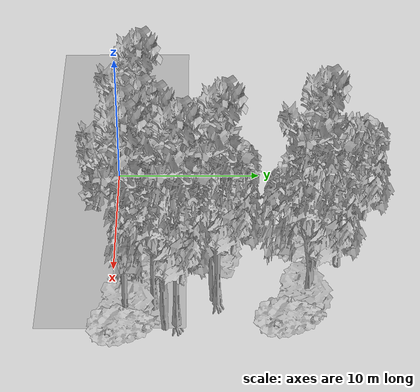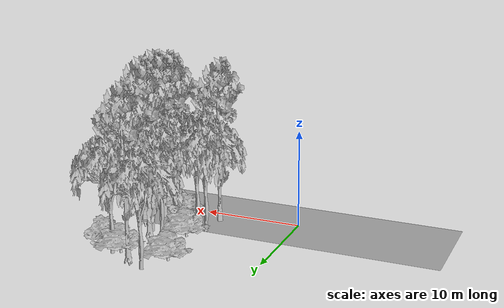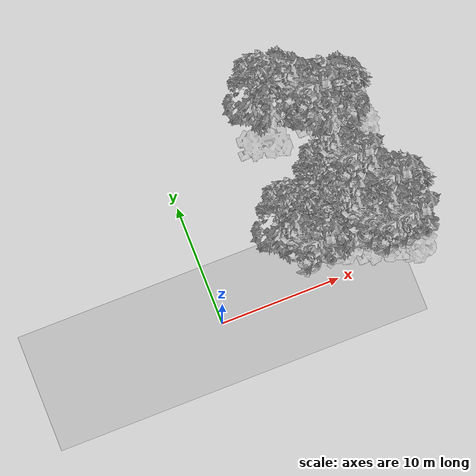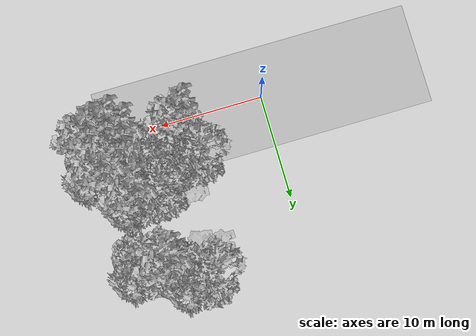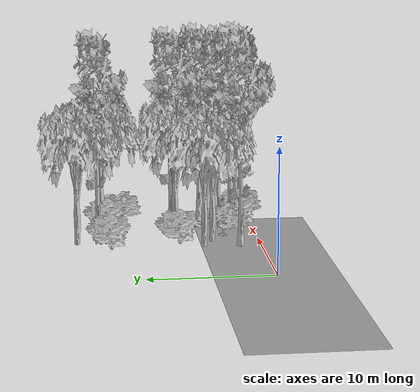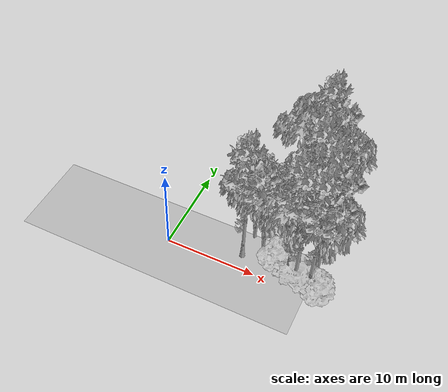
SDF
<sdf version="1.7">
 <world name="default">
  <model name="ground_plane">
   <static>1</static>
   <link name="link">
    <collision name="collision">
     <pose>-50 0 0 0 -0 0</pose>
     <geometry><plane><normal>0 0 1</normal><size>100 100</size></plane></geometry>
     <surface><contact><ode><min_depth>0.01</min_depth><max_vel>0</max_vel></ode></contact></surface>
    </collision>
    <visual name="grass">
     <cast_shadows>0</cast_shadows>
     <geometry>
      <mesh>
       <scale>0.5814285714285714 0.18142857142857144 0.1</scale>
       <uri>file://grass_plane/meshes/grass_plane.dae</uri>
      </mesh>
     </geometry>
    </visual>
   </link>
  </model>
  <model name="Tree 0">
   <static>1</static>
   <pose>11.952881547785147 6.665123771803703 0 1.57079 -0 0</pose>
   <link name="link">
    <collision name="collision">
     <geometry><mesh><scale>3.5 5 3.5</scale><uri>model://tree_2/meshes/tree_2.obj</uri></mesh></geometry>
    </collision>
    <visual name="visual">
     <geometry><mesh><scale>3.5 5 3.5</scale><uri>model://tree_2/meshes/tree_2.obj</uri></mesh></geometry>
    </visual>
   </link>
  </model>
  <model name="Tree 1">
   <static>1</static>
   <pose>13.975722320561026 12.785778803555374 0 1.57079 -0 0</pose>
   <link name="link">
    <collision name="collision">
     <geometry><mesh><scale>3.5 5 3.5</scale><uri>model://tree_2/meshes/tree_2.obj</uri></mesh></geometry>
    </collision>
    <visual name="visual">
     <geometry><mesh><scale>3.5 5 3.5</scale><uri>model://tree_2/meshes/tree_2.obj</uri></mesh></geometry>
    </visual>
   </link>
  </model>
  <model name="Tree 19">
   <static>1</static>
   <pose>12.153450207134867 3.3413821550245935 0 1.57079 -0 0</pose>
   <link name="link">
    <collision name="collision">
     <geometry><mesh><scale>3.5 5 3.5</scale><uri>model://tree_2/meshes/tree_2.obj</uri></mesh></geometry>
    </collision>
    <visual name="visual">
     <geometry><mesh><scale>3.5 5 3.5</scale><uri>model://tree_2/meshes/tree_2.obj</uri></mesh></geometry>
    </visual>
   </link>
  </model>
  <model name="Tree 25">
   <static>1</static>
   <pose>12.189049988500479 13.133916527196217 0 1.57079 -0 0</pose>
   <link name="link">
    <collision name="collision">
     <geometry><mesh><scale>3.5 5 3.5</scale><uri>model://tree_9/meshes/tree_9.obj</uri></mesh></geometry>
    </collision>
    <visual name="visual">
     <geometry><mesh><scale>3.5 5 3.5</scale><uri>model://tree_9/meshes/tree_9.obj</uri></mesh></geometry>
    </visual>
   </link>
  </model>
  <model name="Tree 35">
   <static>1</static>
   <pose>13.080208053278682 1.8805832757678118 0 1.57079 -0 0</pose>
   <link name="link">
    <collision name="collision">
     <geometry><mesh><scale>3.5 5 3.5</scale><uri>model://tree_9/meshes/tree_9.obj</uri></mesh></geometry>
    </collision>
    <visual name="visual">
     <geometry><mesh><scale>3.5 5 3.5</scale><uri>model://tree_9/meshes/tree_9.obj</uri></mesh></geometry>
    </visual>
   </link>
  </model>
  <model name="Tree 54">
   <static>1</static>
   <pose>8.050612538805687 4.645192115805077 0 1.57079 -0 0</pose>
   <link name="link">
    <collision name="collision">
     <geometry><mesh><scale>3.5 5 3.5</scale><uri>model://tree_2/meshes/tree_2.obj</uri></mesh></geometry>
    </collision>
    <visual name="visual">
     <geometry><mesh><scale>3.5 5 3.5</scale><uri>model://tree_2/meshes/tree_2.obj</uri></mesh></geometry>
    </visual>
   </link>
  </model>
  <model name="Tree 61">
   <static>1</static>
   <pose>9.395332496354378 3.830157012810478 0 1.57079 -0 0</pose>
   <link name="link">
    <collision name="collision">
     <geometry><mesh><scale>3.5 5 3.5</scale><uri>model://tree_2/meshes/tree_2.obj</uri></mesh></geometry>
    </collision>
    <visual name="visual">
     <geometry><mesh><scale>3.5 5 3.5</scale><uri>model://tree_2/meshes/tree_2.obj</uri></mesh></geometry>
    </visual>
   </link>
  </model>
  <model name="Tree 71">
   <static>1</static>
   <pose>15.646542429603514 3.546168688105926 0 1.57079 -0 0</pose>
   <link name="link">
    <collision name="collision">
     <geometry><mesh><scale>3.5 5 3.5</scale><uri>model://tree_2/meshes/tree_2.obj</uri></mesh></geometry>
    </collision>
    <visual name="visual">
     <geometry><mesh><scale>3.5 5 3.5</scale><uri>model://tree_2/meshes/tree_2.obj</uri></mesh></geometry>
    </visual>
   </link>
  </model>
  <model name="Tree 87">
   <static>1</static>
   <pose>7.987197289794899 1.6982685209467263 0 1.57079 -0 0</pose>
   <link name="link">
    <collision name="collision">
     <geometry><mesh><scale>3.5 5 3.5</scale><uri>model://tree_9/meshes/tree_9.obj</uri></mesh></geometry>
    </collision>
    <visual name="visual">
     <geometry><mesh><scale>3.5 5 3.5</scale><uri>model://tree_9/meshes/tree_9.obj</uri></mesh></geometry>
    </visual>
   </link>
  </model>
  <model name="Tree 97">
   <static>1</static>
   <pose>14.24066784914951 0.8231828219312138 0 1.57079 -0 0</pose>
   <link name="link">
    <collision name="collision">
     <geometry><mesh><scale>3 2 3</scale><uri>model://tree_3/meshes/tree_3.obj</uri></mesh></geometry>
    </collision>
    <visual name="visual">
     <geometry><mesh><scale>3 2 3</scale><uri>model://tree_3/meshes/tree_3.obj</uri></mesh></geometry>
    </visual>
   </link>
  </model>
  <model name="Tree 128">
   <static>1</static>
   <pose>8.499422770301585 12.15838869686953 0 1.57079 -0 0</pose>
   <link name="link">
    <collision name="collision">
     <geometry><mesh><scale>3 2 3</scale><uri>model://tree_3/meshes/tree_3.obj</uri></mesh></geometry>
    </collision>
    <visual name="visual">
     <geometry><mesh><scale>3 2 3</scale><uri>model://tree_3/meshes/tree_3.obj</uri></mesh></geometry>
    </visual>
   </link>
  </model>
  <model name="Tree 192">
   <static>1</static>
   <pose>15.800527720629034 11.355490840949617 0 1.57079 -0 0</pose>
   <link name="link">
    <collision name="collision">
     <geometry><mesh><scale>4 2.5 4</scale><uri>model://tree_1/meshes/tree_1.obj</uri></mesh></geometry>
    </collision>
    <visual name="visual">
     <geometry><mesh><scale>4 2.5 4</scale><uri>model://tree_1/meshes/tree_1.obj</uri></mesh></geometry>
    </visual>
   </link>
  </model>
  <model name="Tree 325">
   <static>1</static>
   <pose>13.505282332866315 12.239206007289862 0 1.57079 -0 0</pose>
   <link name="link">
    <collision name="collision">
     <geometry><mesh><scale>3 2 3</scale><uri>model://tree_3/meshes/tree_3.obj</uri></mesh></geometry>
    </collision>
    <visual name="visual">
     <geometry><mesh><scale>3 2 3</scale><uri>model://tree_3/meshes/tree_3.obj</uri></mesh></geometry>
    </visual>
   </link>
  </model>
  <model name="Tree 333">
   <static>1</static>
   <pose>12.990005022331943 6.649004210220202 0 1.57079 -0 0</pose>
   <link name="link">
    <collision name="collision">
     <geometry><mesh><scale>3.5 5 3.5</scale><uri>model://tree_2/meshes/tree_2.obj</uri></mesh></geometry>
    </collision>
    <visual name="visual">
     <geometry><mesh><scale>3.5 5 3.5</scale><uri>model://tree_2/meshes/tree_2.obj</uri></mesh></geometry>
    </visual>
   </link>
  </model>
  <model name="Tree 351">
   <static>1</static>
   <pose>13.770500656711086 2.8208628253074615 0 1.57079 -0 0</pose>
   <link name="link">
    <collision name="collision">
     <geometry><mesh><scale>3.5 5 3.5</scale><uri>model://tree_9/meshes/tree_9.obj</uri></mesh></geometry>
    </collision>
    <visual name="visual">
     <geometry><mesh><scale>3.5 5 3.5</scale><uri>model://tree_9/meshes/tree_9.obj</uri></mesh></geometry>
    </visual>
   </link>
  </model>
  <model name="Tree 368">
   <static>1</static>
   <pose>15.670823616366349 1.080312989098104 0 1.57079 -0 0</pose>
   <link name="link">
    <collision name="collision">
     <geometry><mesh><scale>3.5 5 3.5</scale><uri>model://tree_9/meshes/tree_9.obj</uri></mesh></geometry>
    </collision>
    <visual name="visual">
     <geometry><mesh><scale>3.5 5 3.5</scale><uri>model://tree_9/meshes/tree_9.obj</uri></mesh></geometry>
    </visual>
   </link>
  </model>
  <model name="Tree 417">
   <static>1</static>
   <pose>15.365706133383384 4.304561635769069 0 1.57079 -0 0</pose>
   <link name="link">
    <collision name="collision">
     <geometry><mesh><scale>3.5 5 3.5</scale><uri>model://tree_9/meshes/tree_9.obj</uri></mesh></geometry>
    </collision>
    <visual name="visual">
     <geometry><mesh><scale>3.5 5 3.5</scale><uri>model://tree_9/meshes/tree_9.obj</uri></mesh></geometry>
    </visual>
   </link>
  </model>
  <model name="Tree 434">
   <static>1</static>
   <pose>14.146078062782628 0.9283626710277577 0 1.57079 -0 0</pose>
   <link name="link">
    <collision name="collision">
     <geometry><mesh><scale>3.5 5 3.5</scale><uri>model://tree_9/meshes/tree_9.obj</uri></mesh></geometry>
    </collision>
    <visual name="visual">
     <geometry><mesh><scale>3.5 5 3.5</scale><uri>model://tree_9/meshes/tree_9.obj</uri></mesh></geometry>
    </visual>
   </link>
  </model>
  <model name="Tree 440">
   <static>1</static>
   <pose>13.310489265563895 6.923909722176418 0 1.57079 -0 0</pose>
   <link name="link">
    <collision name="collision">
     <geometry><mesh><scale>3.5 5 3.5</scale><uri>model://tree_9/meshes/tree_9.obj</uri></mesh></geometry>
    </collision>
    <visual name="visual">
     <geometry><mesh><scale>3.5 5 3.5</scale><uri>model://tree_9/meshes/tree_9.obj</uri></mesh></geometry>
    </visual>
   </link>
  </model>
  <model name="Tree 461">
   <static>1</static>
   <pose>16.504052063909427 0.7457892826478876 0 1.57079 -0 0</pose>
   <link name="link">
    <collision name="collision">
     <geometry><mesh><scale>4 2.5 4</scale><uri>model://tree_1/meshes/tree_1.obj</uri></mesh></geometry>
    </collision>
    <visual name="visual">
     <geometry><mesh><scale>4 2.5 4</scale><uri>model://tree_1/meshes/tree_1.obj</uri></mesh></geometry>
    </visual>
   </link>
  </model>
  <model name="Tree 471">
   <static>1</static>
   <pose>11.11671143170171 2.7103474526235836 0 1.57079 -0 0</pose>
   <link name="link">
    <collision name="collision">
     <geometry><mesh><scale>4 2.5 4</scale><uri>model://tree_1/meshes/tree_1.obj</uri></mesh></geometry>
    </collision>
    <visual name="visual">
     <geometry><mesh><scale>4 2.5 4</scale><uri>model://tree_1/meshes/tree_1.obj</uri></mesh></geometry>
    </visual>
   </link>
  </model>
  <model name="Tree 491">
   <static>1</static>
   <pose>9.453370051789847 6.473264392119862 0 1.57079 -0 0</pose>
   <link name="link">
    <collision name="collision">
     <geometry><mesh><scale>3 2 3</scale><uri>model://tree_3/meshes/tree_3.obj</uri></mesh></geometry>
    </collision>
    <visual name="visual">
     <geometry><mesh><scale>3 2 3</scale><uri>model://tree_3/meshes/tree_3.obj</uri></mesh></geometry>
    </visual>
   </link>
  </model>
  <model name="Tree 510">
   <static>1</static>
   <pose>9.66834971158211 14.913348450889732 0 1.57079 -0 0</pose>
   <link name="link">
    <collision name="collision">
     <geometry><mesh><scale>3.5 5 3.5</scale><uri>model://tree_2/meshes/tree_2.obj</uri></mesh></geometry>
    </collision>
    <visual name="visual">
     <geometry><mesh><scale>3.5 5 3.5</scale><uri>model://tree_2/meshes/tree_2.obj</uri></mesh></geometry>
    </visual>
   </link>
  </model>
 </world>
</sdf>
